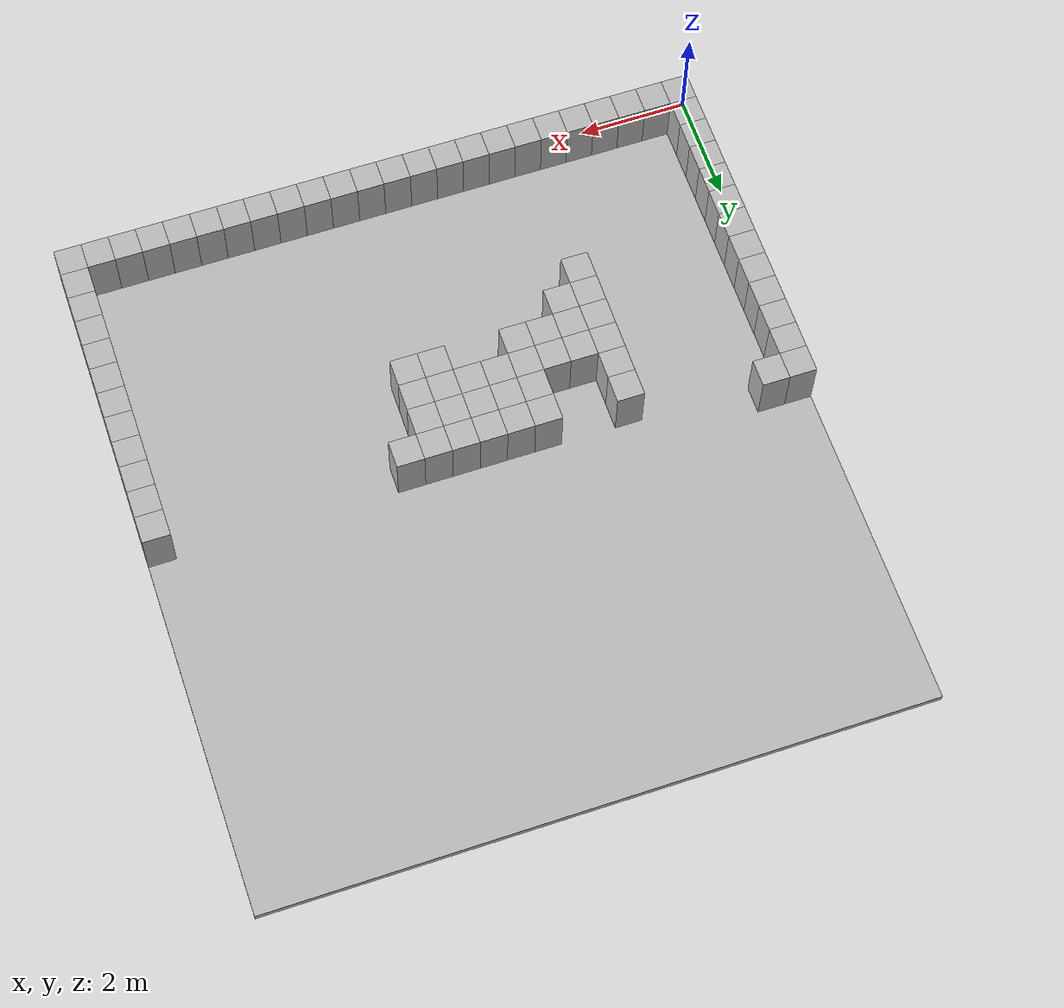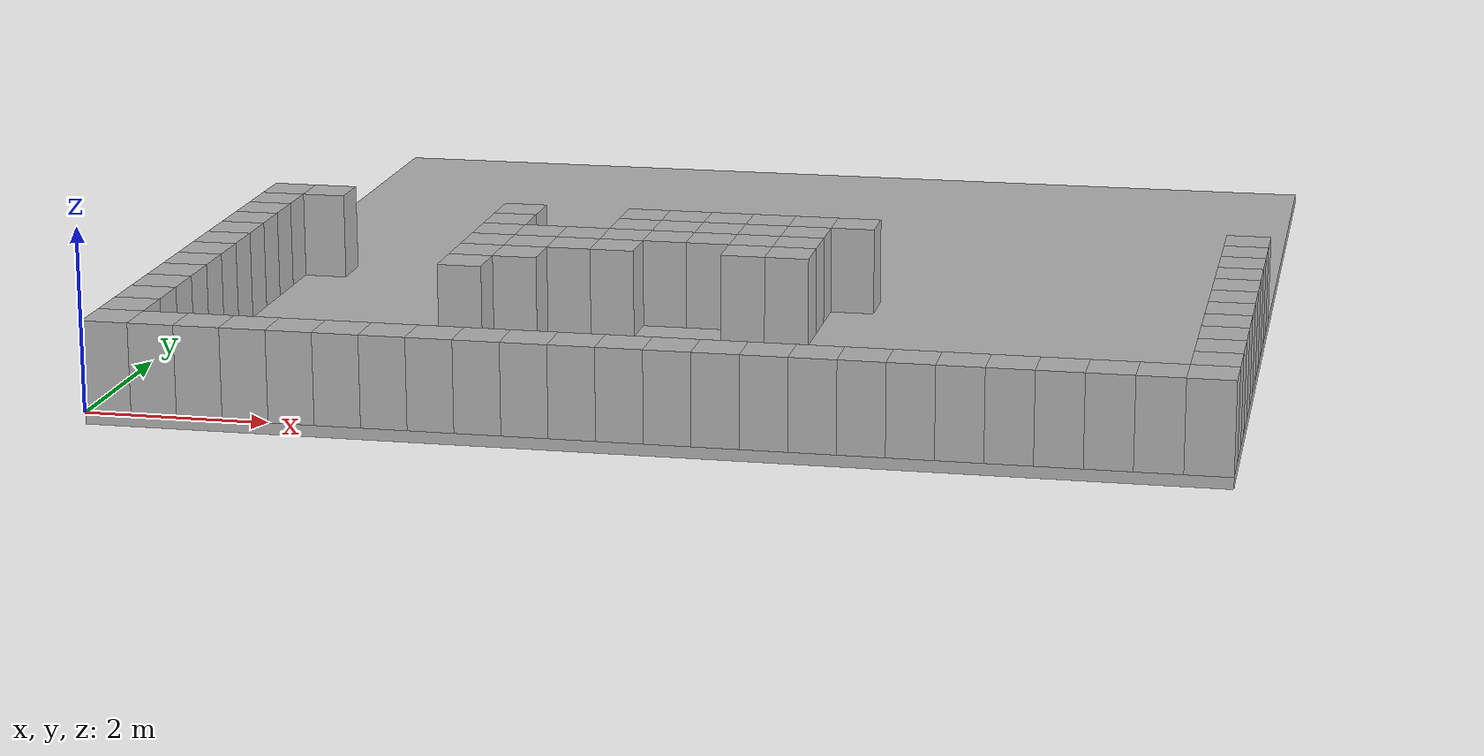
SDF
<sdf version="1.4">
 <world name="default">
  <model name="floor">
   <pose>6.0 6.25 -0.0625 0 0 0</pose>
   <static>true</static>
   <link name="link">
    <collision name="collision"><geometry><box><size>12.0 12.5 0.125</size></box></geometry></collision>
    <visual name="visual"><geometry><box><size>12.0 12.5 0.125</size></box></geometry></visual>
   </link>
  </model>
  <model name="box_0_0">
   <pose>0.25 0.25 0.5 0 0 0</pose>
   <static>true</static>
   <link name="link">
    <collision name="collision"><geometry><box><size>0.5 0.5 1.0</size></box></geometry></collision>
    <visual name="visual"><geometry><box><size>0.5 0.5 1.0</size></box></geometry></visual>
   </link>
  </model>
  <model name="box_0_1">
   <pose>0.25 0.75 0.5 0 0 0</pose>
   <static>true</static>
   <link name="link">
    <collision name="collision"><geometry><box><size>0.5 0.5 1.0</size></box></geometry></collision>
    <visual name="visual"><geometry><box><size>0.5 0.5 1.0</size></box></geometry></visual>
   </link>
  </model>
  <model name="box_0_2">
   <pose>0.25 1.25 0.5 0 0 0</pose>
   <static>true</static>
   <link name="link">
    <collision name="collision"><geometry><box><size>0.5 0.5 1.0</size></box></geometry></collision>
    <visual name="visual"><geometry><box><size>0.5 0.5 1.0</size></box></geometry></visual>
   </link>
  </model>
  <model name="box_0_3">
   <pose>0.25 1.75 0.5 0 0 0</pose>
   <static>true</static>
   <link name="link">
    <collision name="collision"><geometry><box><size>0.5 0.5 1.0</size></box></geometry></collision>
    <visual name="visual"><geometry><box><size>0.5 0.5 1.0</size></box></geometry></visual>
   </link>
  </model>
  <model name="box_0_4">
   <pose>0.25 2.25 0.5 0 0 0</pose>
   <static>true</static>
   <link name="link">
    <collision name="collision"><geometry><box><size>0.5 0.5 1.0</size></box></geometry></collision>
    <visual name="visual"><geometry><box><size>0.5 0.5 1.0</size></box></geometry></visual>
   </link>
  </model>
  <model name="box_0_5">
   <pose>0.25 2.75 0.5 0 0 0</pose>
   <static>true</static>
   <link name="link">
    <collision name="collision"><geometry><box><size>0.5 0.5 1.0</size></box></geometry></collision>
    <visual name="visual"><geometry><box><size>0.5 0.5 1.0</size></box></geometry></visual>
   </link>
  </model>
  <model name="box_0_6">
   <pose>0.25 3.25 0.5 0 0 0</pose>
   <static>true</static>
   <link name="link">
    <collision name="collision"><geometry><box><size>0.5 0.5 1.0</size></box></geometry></collision>
    <visual name="visual"><geometry><box><size>0.5 0.5 1.0</size></box></geometry></visual>
   </link>
  </model>
  <model name="box_0_7">
   <pose>0.25 3.75 0.5 0 0 0</pose>
   <static>true</static>
   <link name="link">
    <collision name="collision"><geometry><box><size>0.5 0.5 1.0</size></box></geometry></collision>
    <visual name="visual"><geometry><box><size>0.5 0.5 1.0</size></box></geometry></visual>
   </link>
  </model>
  <model name="box_0_8">
   <pose>0.25 4.25 0.5 0 0 0</pose>
   <static>true</static>
   <link name="link">
    <collision name="collision"><geometry><box><size>0.5 0.5 1.0</size></box></geometry></collision>
    <visual name="visual"><geometry><box><size>0.5 0.5 1.0</size></box></geometry></visual>
   </link>
  </model>
  <model name="box_0_9">
   <pose>0.25 4.75 0.5 0 0 0</pose>
   <static>true</static>
   <link name="link">
    <collision name="collision"><geometry><box><size>0.5 0.5 1.0</size></box></geometry></collision>
    <visual name="visual"><geometry><box><size>0.5 0.5 1.0</size></box></geometry></visual>
   </link>
  </model>
  <model name="box_0_10">
   <pose>0.25 5.25 0.5 0 0 0</pose>
   <static>true</static>
   <link name="link">
    <collision name="collision"><geometry><box><size>0.5 0.5 1.0</size></box></geometry></collision>
    <visual name="visual"><geometry><box><size>0.5 0.5 1.0</size></box></geometry></visual>
   </link>
  </model>
  <model name="box_0_11">
   <pose>0.25 5.75 0.5 0 0 0</pose>
   <static>true</static>
   <link name="link">
    <collision name="collision"><geometry><box><size>0.5 0.5 1.0</size></box></geometry></collision>
    <visual name="visual"><geometry><box><size>0.5 0.5 1.0</size></box></geometry></visual>
   </link>
  </model>
  <model name="box_0_12">
   <pose>0.25 6.25 0.5 0 0 0</pose>
   <static>true</static>
   <link name="link">
    <collision name="collision"><geometry><box><size>0.5 0.5 1.0</size></box></geometry></collision>
    <visual name="visual"><geometry><box><size>0.5 0.5 1.0</size></box></geometry></visual>
   </link>
  </model>
  <model name="box_1_0">
   <pose>0.75 0.25 0.5 0 0 0</pose>
   <static>true</static>
   <link name="link">
    <collision name="collision"><geometry><box><size>0.5 0.5 1.0</size></box></geometry></collision>
    <visual name="visual"><geometry><box><size>0.5 0.5 1.0</size></box></geometry></visual>
   </link>
  </model>
  <model name="box_1_12">
   <pose>0.75 6.25 0.5 0 0 0</pose>
   <static>true</static>
   <link name="link">
    <collision name="collision"><geometry><box><size>0.5 0.5 1.0</size></box></geometry></collision>
    <visual name="visual"><geometry><box><size>0.5 0.5 1.0</size></box></geometry></visual>
   </link>
  </model>
  <model name="box_2_0">
   <pose>1.25 0.25 0.5 0 0 0</pose>
   <static>true</static>
   <link name="link">
    <collision name="collision"><geometry><box><size>0.5 0.5 1.0</size></box></geometry></collision>
    <visual name="visual"><geometry><box><size>0.5 0.5 1.0</size></box></geometry></visual>
   </link>
  </model>
  <model name="box_3_0">
   <pose>1.75 0.25 0.5 0 0 0</pose>
   <static>true</static>
   <link name="link">
    <collision name="collision"><geometry><box><size>0.5 0.5 1.0</size></box></geometry></collision>
    <visual name="visual"><geometry><box><size>0.5 0.5 1.0</size></box></geometry></visual>
   </link>
  </model>
  <model name="box_4_0">
   <pose>2.25 0.25 0.5 0 0 0</pose>
   <static>true</static>
   <link name="link">
    <collision name="collision"><geometry><box><size>0.5 0.5 1.0</size></box></geometry></collision>
    <visual name="visual"><geometry><box><size>0.5 0.5 1.0</size></box></geometry></visual>
   </link>
  </model>
  <model name="box_5_0">
   <pose>2.75 0.25 0.5 0 0 0</pose>
   <static>true</static>
   <link name="link">
    <collision name="collision"><geometry><box><size>0.5 0.5 1.0</size></box></geometry></collision>
    <visual name="visual"><geometry><box><size>0.5 0.5 1.0</size></box></geometry></visual>
   </link>
  </model>
  <model name="box_6_0">
   <pose>3.25 0.25 0.5 0 0 0</pose>
   <static>true</static>
   <link name="link">
    <collision name="collision"><geometry><box><size>0.5 0.5 1.0</size></box></geometry></collision>
    <visual name="visual"><geometry><box><size>0.5 0.5 1.0</size></box></geometry></visual>
   </link>
  </model>
  <model name="box_6_6">
   <pose>3.25 3.25 0.5 0 0 0</pose>
   <static>true</static>
   <link name="link">
    <collision name="collision"><geometry><box><size>0.5 0.5 1.0</size></box></geometry></collision>
    <visual name="visual"><geometry><box><size>0.5 0.5 1.0</size></box></geometry></visual>
   </link>
  </model>
  <model name="box_6_7">
   <pose>3.25 3.75 0.5 0 0 0</pose>
   <static>true</static>
   <link name="link">
    <collision name="collision"><geometry><box><size>0.5 0.5 1.0</size></box></geometry></collision>
    <visual name="visual"><geometry><box><size>0.5 0.5 1.0</size></box></geometry></visual>
   </link>
  </model>
  <model name="box_6_8">
   <pose>3.25 4.25 0.5 0 0 0</pose>
   <static>true</static>
   <link name="link">
    <collision name="collision"><geometry><box><size>0.5 0.5 1.0</size></box></geometry></collision>
    <visual name="visual"><geometry><box><size>0.5 0.5 1.0</size></box></geometry></visual>
   </link>
  </model>
  <model name="box_6_9">
   <pose>3.25 4.75 0.5 0 0 0</pose>
   <static>true</static>
   <link name="link">
    <collision name="collision"><geometry><box><size>0.5 0.5 1.0</size></box></geometry></collision>
    <visual name="visual"><geometry><box><size>0.5 0.5 1.0</size></box></geometry></visual>
   </link>
  </model>
  <model name="box_6_10">
   <pose>3.25 5.25 0.5 0 0 0</pose>
   <static>true</static>
   <link name="link">
    <collision name="collision"><geometry><box><size>0.5 0.5 1.0</size></box></geometry></collision>
    <visual name="visual"><geometry><box><size>0.5 0.5 1.0</size></box></geometry></visual>
   </link>
  </model>
  <model name="box_6_11">
   <pose>3.25 5.75 0.5 0 0 0</pose>
   <static>true</static>
   <link name="link">
    <collision name="collision"><geometry><box><size>0.5 0.5 1.0</size></box></geometry></collision>
    <visual name="visual"><geometry><box><size>0.5 0.5 1.0</size></box></geometry></visual>
   </link>
  </model>
  <model name="box_7_0">
   <pose>3.75 0.25 0.5 0 0 0</pose>
   <static>true</static>
   <link name="link">
    <collision name="collision"><geometry><box><size>0.5 0.5 1.0</size></box></geometry></collision>
    <visual name="visual"><geometry><box><size>0.5 0.5 1.0</size></box></geometry></visual>
   </link>
  </model>
  <model name="box_7_7">
   <pose>3.75 3.75 0.5 0 0 0</pose>
   <static>true</static>
   <link name="link">
    <collision name="collision"><geometry><box><size>0.5 0.5 1.0</size></box></geometry></collision>
    <visual name="visual"><geometry><box><size>0.5 0.5 1.0</size></box></geometry></visual>
   </link>
  </model>
  <model name="box_7_8">
   <pose>3.75 4.25 0.5 0 0 0</pose>
   <static>true</static>
   <link name="link">
    <collision name="collision"><geometry><box><size>0.5 0.5 1.0</size></box></geometry></collision>
    <visual name="visual"><geometry><box><size>0.5 0.5 1.0</size></box></geometry></visual>
   </link>
  </model>
  <model name="box_7_9">
   <pose>3.75 4.75 0.5 0 0 0</pose>
   <static>true</static>
   <link name="link">
    <collision name="collision"><geometry><box><size>0.5 0.5 1.0</size></box></geometry></collision>
    <visual name="visual"><geometry><box><size>0.5 0.5 1.0</size></box></geometry></visual>
   </link>
  </model>
  <model name="box_8_0">
   <pose>4.25 0.25 0.5 0 0 0</pose>
   <static>true</static>
   <link name="link">
    <collision name="collision"><geometry><box><size>0.5 0.5 1.0</size></box></geometry></collision>
    <visual name="visual"><geometry><box><size>0.5 0.5 1.0</size></box></geometry></visual>
   </link>
  </model>
  <model name="box_8_8">
   <pose>4.25 4.25 0.5 0 0 0</pose>
   <static>true</static>
   <link name="link">
    <collision name="collision"><geometry><box><size>0.5 0.5 1.0</size></box></geometry></collision>
    <visual name="visual"><geometry><box><size>0.5 0.5 1.0</size></box></geometry></visual>
   </link>
  </model>
  <model name="box_8_9">
   <pose>4.25 4.75 0.5 0 0 0</pose>
   <static>true</static>
   <link name="link">
    <collision name="collision"><geometry><box><size>0.5 0.5 1.0</size></box></geometry></collision>
    <visual name="visual"><geometry><box><size>0.5 0.5 1.0</size></box></geometry></visual>
   </link>
  </model>
  <model name="box_9_0">
   <pose>4.75 0.25 0.5 0 0 0</pose>
   <static>true</static>
   <link name="link">
    <collision name="collision"><geometry><box><size>0.5 0.5 1.0</size></box></geometry></collision>
    <visual name="visual"><geometry><box><size>0.5 0.5 1.0</size></box></geometry></visual>
   </link>
  </model>
  <model name="box_9_8">
   <pose>4.75 4.25 0.5 0 0 0</pose>
   <static>true</static>
   <link name="link">
    <collision name="collision"><geometry><box><size>0.5 0.5 1.0</size></box></geometry></collision>
    <visual name="visual"><geometry><box><size>0.5 0.5 1.0</size></box></geometry></visual>
   </link>
  </model>
  <model name="box_9_9">
   <pose>4.75 4.75 0.5 0 0 0</pose>
   <static>true</static>
   <link name="link">
    <collision name="collision"><geometry><box><size>0.5 0.5 1.0</size></box></geometry></collision>
    <visual name="visual"><geometry><box><size>0.5 0.5 1.0</size></box></geometry></visual>
   </link>
  </model>
  <model name="box_9_10">
   <pose>4.75 5.25 0.5 0 0 0</pose>
   <static>true</static>
   <link name="link">
    <collision name="collision"><geometry><box><size>0.5 0.5 1.0</size></box></geometry></collision>
    <visual name="visual"><geometry><box><size>0.5 0.5 1.0</size></box></geometry></visual>
   </link>
  </model>
  <model name="box_9_11">
   <pose>4.75 5.75 0.5 0 0 0</pose>
   <static>true</static>
   <link name="link">
    <collision name="collision"><geometry><box><size>0.5 0.5 1.0</size></box></geometry></collision>
    <visual name="visual"><geometry><box><size>0.5 0.5 1.0</size></box></geometry></visual>
   </link>
  </model>
  <model name="box_10_0">
   <pose>5.25 0.25 0.5 0 0 0</pose>
   <static>true</static>
   <link name="link">
    <collision name="collision"><geometry><box><size>0.5 0.5 1.0</size></box></geometry></collision>
    <visual name="visual"><geometry><box><size>0.5 0.5 1.0</size></box></geometry></visual>
   </link>
  </model>
  <model name="box_10_9">
   <pose>5.25 4.75 0.5 0 0 0</pose>
   <static>true</static>
   <link name="link">
    <collision name="collision"><geometry><box><size>0.5 0.5 1.0</size></box></geometry></collision>
    <visual name="visual"><geometry><box><size>0.5 0.5 1.0</size></box></geometry></visual>
   </link>
  </model>
  <model name="box_10_10">
   <pose>5.25 5.25 0.5 0 0 0</pose>
   <static>true</static>
   <link name="link">
    <collision name="collision"><geometry><box><size>0.5 0.5 1.0</size></box></geometry></collision>
    <visual name="visual"><geometry><box><size>0.5 0.5 1.0</size></box></geometry></visual>
   </link>
  </model>
  <model name="box_10_11">
   <pose>5.25 5.75 0.5 0 0 0</pose>
   <static>true</static>
   <link name="link">
    <collision name="collision"><geometry><box><size>0.5 0.5 1.0</size></box></geometry></collision>
    <visual name="visual"><geometry><box><size>0.5 0.5 1.0</size></box></geometry></visual>
   </link>
  </model>
  <model name="box_11_0">
   <pose>5.75 0.25 0.5 0 0 0</pose>
   <static>true</static>
   <link name="link">
    <collision name="collision"><geometry><box><size>0.5 0.5 1.0</size></box></geometry></collision>
    <visual name="visual"><geometry><box><size>0.5 0.5 1.0</size></box></geometry></visual>
   </link>
  </model>
  <model name="box_11_9">
   <pose>5.75 4.75 0.5 0 0 0</pose>
   <static>true</static>
   <link name="link">
    <collision name="collision"><geometry><box><size>0.5 0.5 1.0</size></box></geometry></collision>
    <visual name="visual"><geometry><box><size>0.5 0.5 1.0</size></box></geometry></visual>
   </link>
  </model>
  <model name="box_11_10">
   <pose>5.75 5.25 0.5 0 0 0</pose>
   <static>true</static>
   <link name="link">
    <collision name="collision"><geometry><box><size>0.5 0.5 1.0</size></box></geometry></collision>
    <visual name="visual"><geometry><box><size>0.5 0.5 1.0</size></box></geometry></visual>
   </link>
  </model>
  <model name="box_11_11">
   <pose>5.75 5.75 0.5 0 0 0</pose>
   <static>true</static>
   <link name="link">
    <collision name="collision"><geometry><box><size>0.5 0.5 1.0</size></box></geometry></collision>
    <visual name="visual"><geometry><box><size>0.5 0.5 1.0</size></box></geometry></visual>
   </link>
  </model>
  <model name="box_12_0">
   <pose>6.25 0.25 0.5 0 0 0</pose>
   <static>true</static>
   <link name="link">
    <collision name="collision"><geometry><box><size>0.5 0.5 1.0</size></box></geometry></collision>
    <visual name="visual"><geometry><box><size>0.5 0.5 1.0</size></box></geometry></visual>
   </link>
  </model>
  <model name="box_12_8">
   <pose>6.25 4.25 0.5 0 0 0</pose>
   <static>true</static>
   <link name="link">
    <collision name="collision"><geometry><box><size>0.5 0.5 1.0</size></box></geometry></collision>
    <visual name="visual"><geometry><box><size>0.5 0.5 1.0</size></box></geometry></visual>
   </link>
  </model>
  <model name="box_12_9">
   <pose>6.25 4.75 0.5 0 0 0</pose>
   <static>true</static>
   <link name="link">
    <collision name="collision"><geometry><box><size>0.5 0.5 1.0</size></box></geometry></collision>
    <visual name="visual"><geometry><box><size>0.5 0.5 1.0</size></box></geometry></visual>
   </link>
  </model>
  <model name="box_12_10">
   <pose>6.25 5.25 0.5 0 0 0</pose>
   <static>true</static>
   <link name="link">
    <collision name="collision"><geometry><box><size>0.5 0.5 1.0</size></box></geometry></collision>
    <visual name="visual"><geometry><box><size>0.5 0.5 1.0</size></box></geometry></visual>
   </link>
  </model>
  <model name="box_12_11">
   <pose>6.25 5.75 0.5 0 0 0</pose>
   <static>true</static>
   <link name="link">
    <collision name="collision"><geometry><box><size>0.5 0.5 1.0</size></box></geometry></collision>
    <visual name="visual"><geometry><box><size>0.5 0.5 1.0</size></box></geometry></visual>
   </link>
  </model>
  <model name="box_13_0">
   <pose>6.75 0.25 0.5 0 0 0</pose>
   <static>true</static>
   <link name="link">
    <collision name="collision"><geometry><box><size>0.5 0.5 1.0</size></box></geometry></collision>
    <visual name="visual"><geometry><box><size>0.5 0.5 1.0</size></box></geometry></visual>
   </link>
  </model>
  <model name="box_13_8">
   <pose>6.75 4.25 0.5 0 0 0</pose>
   <static>true</static>
   <link name="link">
    <collision name="collision"><geometry><box><size>0.5 0.5 1.0</size></box></geometry></collision>
    <visual name="visual"><geometry><box><size>0.5 0.5 1.0</size></box></geometry></visual>
   </link>
  </model>
  <model name="box_13_9">
   <pose>6.75 4.75 0.5 0 0 0</pose>
   <static>true</static>
   <link name="link">
    <collision name="collision"><geometry><box><size>0.5 0.5 1.0</size></box></geometry></collision>
    <visual name="visual"><geometry><box><size>0.5 0.5 1.0</size></box></geometry></visual>
   </link>
  </model>
  <model name="box_13_10">
   <pose>6.75 5.25 0.5 0 0 0</pose>
   <static>true</static>
   <link name="link">
    <collision name="collision"><geometry><box><size>0.5 0.5 1.0</size></box></geometry></collision>
    <visual name="visual"><geometry><box><size>0.5 0.5 1.0</size></box></geometry></visual>
   </link>
  </model>
  <model name="box_13_11">
   <pose>6.75 5.75 0.5 0 0 0</pose>
   <static>true</static>
   <link name="link">
    <collision name="collision"><geometry><box><size>0.5 0.5 1.0</size></box></geometry></collision>
    <visual name="visual"><geometry><box><size>0.5 0.5 1.0</size></box></geometry></visual>
   </link>
  </model>
  <model name="box_14_0">
   <pose>7.25 0.25 0.5 0 0 0</pose>
   <static>true</static>
   <link name="link">
    <collision name="collision"><geometry><box><size>0.5 0.5 1.0</size></box></geometry></collision>
    <visual name="visual"><geometry><box><size>0.5 0.5 1.0</size></box></geometry></visual>
   </link>
  </model>
  <model name="box_14_11">
   <pose>7.25 5.75 0.5 0 0 0</pose>
   <static>true</static>
   <link name="link">
    <collision name="collision"><geometry><box><size>0.5 0.5 1.0</size></box></geometry></collision>
    <visual name="visual"><geometry><box><size>0.5 0.5 1.0</size></box></geometry></visual>
   </link>
  </model>
  <model name="box_15_0">
   <pose>7.75 0.25 0.5 0 0 0</pose>
   <static>true</static>
   <link name="link">
    <collision name="collision"><geometry><box><size>0.5 0.5 1.0</size></box></geometry></collision>
    <visual name="visual"><geometry><box><size>0.5 0.5 1.0</size></box></geometry></visual>
   </link>
  </model>
  <model name="box_16_0">
   <pose>8.25 0.25 0.5 0 0 0</pose>
   <static>true</static>
   <link name="link">
    <collision name="collision"><geometry><box><size>0.5 0.5 1.0</size></box></geometry></collision>
    <visual name="visual"><geometry><box><size>0.5 0.5 1.0</size></box></geometry></visual>
   </link>
  </model>
  <model name="box_17_0">
   <pose>8.75 0.25 0.5 0 0 0</pose>
   <static>true</static>
   <link name="link">
    <collision name="collision"><geometry><box><size>0.5 0.5 1.0</size></box></geometry></collision>
    <visual name="visual"><geometry><box><size>0.5 0.5 1.0</size></box></geometry></visual>
   </link>
  </model>
  <model name="box_18_0">
   <pose>9.25 0.25 0.5 0 0 0</pose>
   <static>true</static>
   <link name="link">
    <collision name="collision"><geometry><box><size>0.5 0.5 1.0</size></box></geometry></collision>
    <visual name="visual"><geometry><box><size>0.5 0.5 1.0</size></box></geometry></visual>
   </link>
  </model>
  <model name="box_19_0">
   <pose>9.75 0.25 0.5 0 0 0</pose>
   <static>true</static>
   <link name="link">
    <collision name="collision"><geometry><box><size>0.5 0.5 1.0</size></box></geometry></collision>
    <visual name="visual"><geometry><box><size>0.5 0.5 1.0</size></box></geometry></visual>
   </link>
  </model>
  <model name="box_20_0">
   <pose>10.25 0.25 0.5 0 0 0</pose>
   <static>true</static>
   <link name="link">
    <collision name="collision"><geometry><box><size>0.5 0.5 1.0</size></box></geometry></collision>
    <visual name="visual"><geometry><box><size>0.5 0.5 1.0</size></box></geometry></visual>
   </link>
  </model>
  <model name="box_21_0">
   <pose>10.75 0.25 0.5 0 0 0</pose>
   <static>true</static>
   <link name="link">
    <collision name="collision"><geometry><box><size>0.5 0.5 1.0</size></box></geometry></collision>
    <visual name="visual"><geometry><box><size>0.5 0.5 1.0</size></box></geometry></visual>
   </link>
  </model>
  <model name="box_22_0">
   <pose>11.25 0.25 0.5 0 0 0</pose>
   <static>true</static>
   <link name="link">
    <collision name="collision"><geometry><box><size>0.5 0.5 1.0</size></box></geometry></collision>
    <visual name="visual"><geometry><box><size>0.5 0.5 1.0</size></box></geometry></visual>
   </link>
  </model>
  <model name="box_23_0">
   <pose>11.75 0.25 0.5 0 0 0</pose>
   <static>true</static>
   <link name="link">
    <collision name="collision"><geometry><box><size>0.5 0.5 1.0</size></box></geometry></collision>
    <visual name="visual"><geometry><box><size>0.5 0.5 1.0</size></box></geometry></visual>
   </link>
  </model>
  <model name="box_23_1">
   <pose>11.75 0.75 0.5 0 0 0</pose>
   <static>true</static>
   <link name="link">
    <collision name="collision"><geometry><box><size>0.5 0.5 1.0</size></box></geometry></collision>
    <visual name="visual"><geometry><box><size>0.5 0.5 1.0</size></box></geometry></visual>
   </link>
  </model>
  <model name="box_23_2">
   <pose>11.75 1.25 0.5 0 0 0</pose>
   <static>true</static>
   <link name="link">
    <collision name="collision"><geometry><box><size>0.5 0.5 1.0</size></box></geometry></collision>
    <visual name="visual"><geometry><box><size>0.5 0.5 1.0</size></box></geometry></visual>
   </link>
  </model>
  <model name="box_23_3">
   <pose>11.75 1.75 0.5 0 0 0</pose>
   <static>true</static>
   <link name="link">
    <collision name="collision"><geometry><box><size>0.5 0.5 1.0</size></box></geometry></collision>
    <visual name="visual"><geometry><box><size>0.5 0.5 1.0</size></box></geometry></visual>
   </link>
  </model>
  <model name="box_23_4">
   <pose>11.75 2.25 0.5 0 0 0</pose>
   <static>true</static>
   <link name="link">
    <collision name="collision"><geometry><box><size>0.5 0.5 1.0</size></box></geometry></collision>
    <visual name="visual"><geometry><box><size>0.5 0.5 1.0</size></box></geometry></visual>
   </link>
  </model>
  <model name="box_23_5">
   <pose>11.75 2.75 0.5 0 0 0</pose>
   <static>true</static>
   <link name="link">
    <collision name="collision"><geometry><box><size>0.5 0.5 1.0</size></box></geometry></collision>
    <visual name="visual"><geometry><box><size>0.5 0.5 1.0</size></box></geometry></visual>
   </link>
  </model>
  <model name="box_23_6">
   <pose>11.75 3.25 0.5 0 0 0</pose>
   <static>true</static>
   <link name="link">
    <collision name="collision"><geometry><box><size>0.5 0.5 1.0</size></box></geometry></collision>
    <visual name="visual"><geometry><box><size>0.5 0.5 1.0</size></box></geometry></visual>
   </link>
  </model>
  <model name="box_23_7">
   <pose>11.75 3.75 0.5 0 0 0</pose>
   <static>true</static>
   <link name="link">
    <collision name="collision"><geometry><box><size>0.5 0.5 1.0</size></box></geometry></collision>
    <visual name="visual"><geometry><box><size>0.5 0.5 1.0</size></box></geometry></visual>
   </link>
  </model>
  <model name="box_23_8">
   <pose>11.75 4.25 0.5 0 0 0</pose>
   <static>true</static>
   <link name="link">
    <collision name="collision"><geometry><box><size>0.5 0.5 1.0</size></box></geometry></collision>
    <visual name="visual"><geometry><box><size>0.5 0.5 1.0</size></box></geometry></visual>
   </link>
  </model>
  <model name="box_23_9">
   <pose>11.75 4.75 0.5 0 0 0</pose>
   <static>true</static>
   <link name="link">
    <collision name="collision"><geometry><box><size>0.5 0.5 1.0</size></box></geometry></collision>
    <visual name="visual"><geometry><box><size>0.5 0.5 1.0</size></box></geometry></visual>
   </link>
  </model>
  <model name="box_23_10">
   <pose>11.75 5.25 0.5 0 0 0</pose>
   <static>true</static>
   <link name="link">
    <collision name="collision"><geometry><box><size>0.5 0.5 1.0</size></box></geometry></collision>
    <visual name="visual"><geometry><box><size>0.5 0.5 1.0</size></box></geometry></visual>
   </link>
  </model>
  <model name="box_23_11">
   <pose>11.75 5.75 0.5 0 0 0</pose>
   <static>true</static>
   <link name="link">
    <collision name="collision"><geometry><box><size>0.5 0.5 1.0</size></box></geometry></collision>
    <visual name="visual"><geometry><box><size>0.5 0.5 1.0</size></box></geometry></visual>
   </link>
  </model>
 </world>
</sdf>
